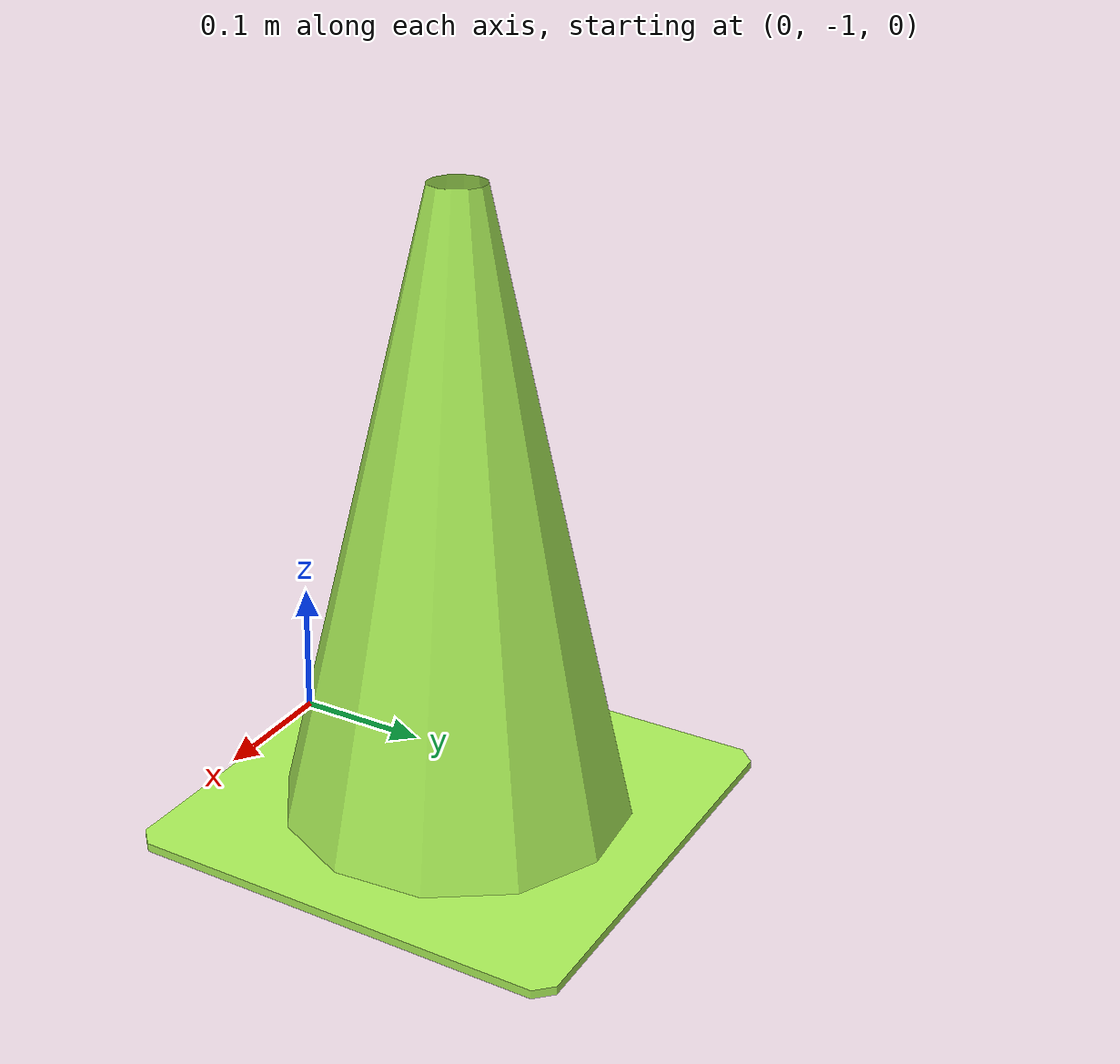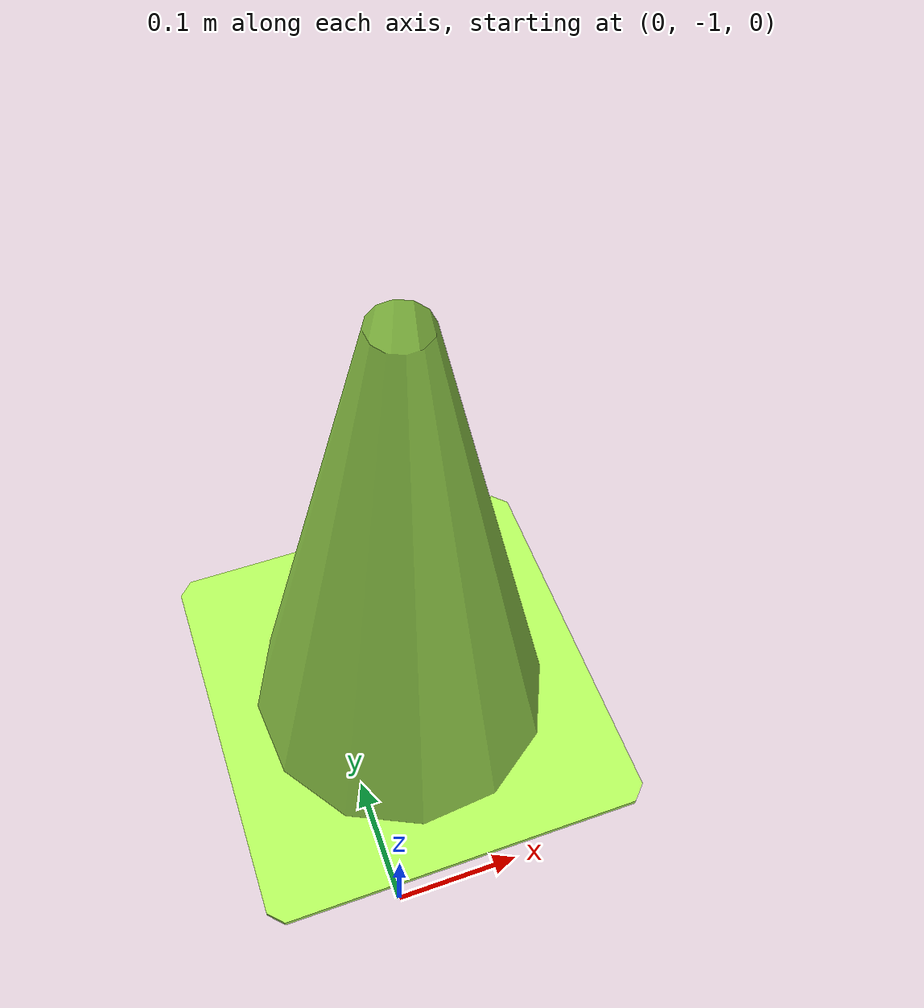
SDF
<?xml version='1.0'?>
<sdf version='1.7'>
  <model name='neon_cone'>
    <link name='link'>
      <inertial>
        <pose>0 0.1 0 0 -0 0</pose>
        <mass>1</mass>
        <inertia>
          <ixx>0.1</ixx>
          <iyy>0.1</iyy>
          <izz>0</izz>
          <ixy>0</ixy>
          <ixz>0</ixz>
          <iyz>0</iyz>
        </inertia>
      </inertial>
      <enable_wind>0</enable_wind>
      <kinematic>0</kinematic>
      <self_collide>0</self_collide>
      <pose>-0.104311 -0.990632 5.9e-05 0 -0 0</pose>
      <gravity>1</gravity>
      <static>1</static>
      <visual name='visual'>
        <geometry>
          <mesh>
            <scale>1 1 1</scale>
            <uri>file://model.dae</uri>
          </mesh>
        </geometry>
        <material>
          <shader type='pixel'>
            <normal_map>__default__</normal_map>
          </shader>
          <script>
            <name>ModelPreview_1::link::visual_MATERIAL_</name>
            <uri>__default__</uri>
          </script>
          <ambient>0.682 0.953 0.349 0</ambient>
          <diffuse>0.682 0.953 0.349 1</diffuse>
          <specular>0 0 0 1</specular>
          <emissive>0 0 0 1</emissive>
        </material>
        <pose>0 0 0 0 -0 0</pose>
        <transparency>0</transparency>
        <cast_shadows>1</cast_shadows>
      </visual>
      <collision name='collision'>
        <laser_retro>0</laser_retro>
        <max_contacts>10</max_contacts>
        <pose>0 0 0 0 -0 0</pose>
        <geometry>
          <mesh>
            <uri>/home/josh/robot_ws/src/open-source-autonomous-vehicle-controller/car_ros/worlds/model.dae</uri>
            <scale>1 1 1</scale>
          </mesh>
        </geometry>
        <surface>
          <friction>
            <ode>
              <mu>1</mu>
              <mu2>1</mu2>
              <fdir1>0 0 0</fdir1>
              <slip1>0</slip1>
              <slip2>0</slip2>
            </ode>
            <torsional>
              <coefficient>1</coefficient>
              <patch_radius>0</patch_radius>
              <surface_radius>0</surface_radius>
              <use_patch_radius>1</use_patch_radius>
              <ode>
                <slip>0</slip>
              </ode>
            </torsional>
          </friction>
          <bounce>
            <restitution_coefficient>0</restitution_coefficient>
            <threshold>1e+06</threshold>
          </bounce>
          <contact>
            <collide_without_contact>0</collide_without_contact>
            <collide_without_contact_bitmask>1</collide_without_contact_bitmask>
            <collide_bitmask>1</collide_bitmask>
            <ode>
              <soft_cfm>0</soft_cfm>
              <soft_erp>0.2</soft_erp>
              <kp>1e+13</kp>
              <kd>1</kd>
              <max_vel>0.01</max_vel>
              <min_depth>0</min_depth>
            </ode>
            <bullet>
              <split_impulse>1</split_impulse>
              <split_impulse_penetration_threshold>-0.01</split_impulse_penetration_threshold>
              <soft_cfm>0</soft_cfm>
              <soft_erp>0.2</soft_erp>
              <kp>1e+13</kp>
              <kd>1</kd>
            </bullet>
          </contact>
        </surface>
      </collision>
    </link>
    <static>0</static>
    <allow_auto_disable>1</allow_auto_disable>
  </model>
</sdf>
